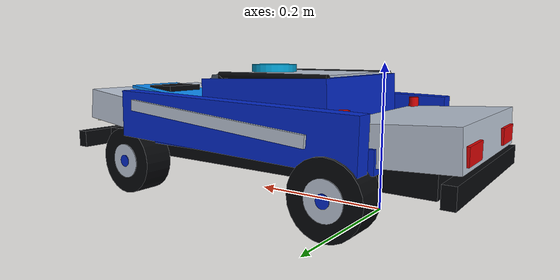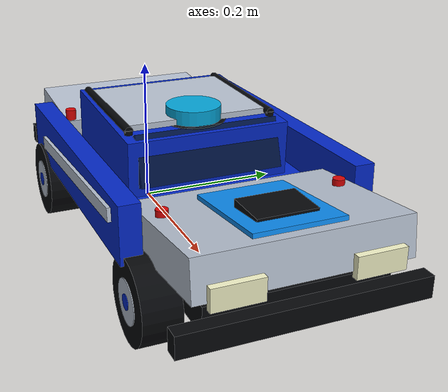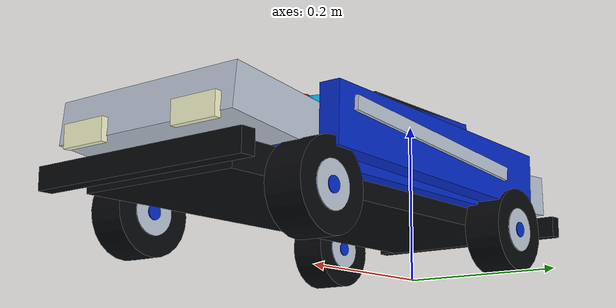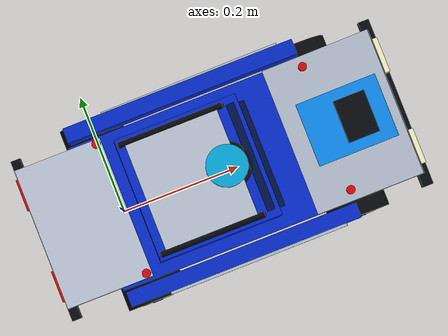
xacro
<?xml version="1.0"?>
<robot xmlns:xacro="http://www.ros.org/wiki/xacro" name="xycar">
  <!-- Measured geometry. Coordinate convention: +x forward, +y left, +z up. -->
  <xacro:arg name="wheelbase" default="0.355"/>
  <xacro:arg name="front_track" default="0.250"/>
  <xacro:arg name="rear_track" default="0.266"/>
  <xacro:arg name="front_wheel_radius" default="0.050"/>
  <xacro:arg name="rear_wheel_radius" default="0.050"/>
  <xacro:arg name="effective_wheel_radius" default="0.050"/>
  <xacro:arg name="wheel_width" default="0.045"/>
  <xacro:arg name="front_overhang" default="0.125"/>
  <xacro:arg name="rear_overhang" default="0.140"/>
  <xacro:arg name="vehicle_length" default="0.620"/>
  <xacro:arg name="vehicle_height" default="0.187"/>
  <xacro:arg name="total_mass" default="4.1"/>
  <!-- 추정값 — 실측 필요. 전체 폭 미측정으로 독립 xacro 인자화했다. -->
  <xacro:arg name="vehicle_width" default="0.320"/>

  <!-- 미측정값 — 실측 후 조정할 동역학 파라미터. -->
  <xacro:arg name="tire_friction_mu" default="1.0"/>
  <xacro:arg name="tire_friction_mu2" default="1.0"/>
  <xacro:arg name="longitudinal_slip" default="0.0"/>
  <xacro:arg name="lateral_slip" default="0.0"/>
  <xacro:arg name="wheel_normal_force_n" default="10.05"/>
  <xacro:arg name="max_acceleration_mps2" default="1.5"/>
  <xacro:arg name="max_deceleration_mps2" default="-2.0"/>
  <xacro:arg name="max_jerk_mps3" default="10.0"/>
  <xacro:arg name="min_jerk_mps3" default="-10.0"/>
  <xacro:arg name="steering_joint_velocity_rad_s" default="1.2"/>
  <xacro:arg name="gazebo_steering_limit_rad" default="0.72"/>

  <!-- 센서 장착 위치도 미측정값 — 실측 필요. rosbag에서 동역학/pose를 추정하지 않았다. -->
  <xacro:arg name="camera_xyz" default="0.400 0 0.140"/>
  <xacro:arg name="camera_rpy" default="0 0 0"/>
  <xacro:arg name="lidar_xyz" default="0.180 0 0.180"/>
  <xacro:arg name="lidar_rpy" default="0 0 0"/>

  <xacro:arg name="camera_update_rate_hz" default="30.0"/>
  <xacro:arg name="camera_horizontal_fov_rad" default="1.260227895"/>
  <xacro:arg name="lidar_update_rate_hz" default="9.66"/>
  <xacro:arg name="lidar_samples" default="500"/>
  <xacro:arg name="lidar_min_angle_rad" default="-3.141592654"/>
  <xacro:arg name="lidar_max_angle_rad" default="3.141592654"/>
  <xacro:arg name="lidar_min_range_m" default="0.1"/>
  <xacro:arg name="lidar_max_range_m" default="16.0"/>
  <xacro:arg name="lidar_range_resolution_m" default="0.01"/>

  <xacro:property name="wheelbase" value="$(arg wheelbase)"/>
  <xacro:property name="front_track" value="$(arg front_track)"/>
  <xacro:property name="rear_track" value="$(arg rear_track)"/>
  <xacro:property name="front_wheel_radius" value="$(arg front_wheel_radius)"/>
  <xacro:property name="rear_wheel_radius" value="$(arg rear_wheel_radius)"/>
  <xacro:property name="effective_wheel_radius" value="$(arg effective_wheel_radius)"/>
  <xacro:property name="wheel_width" value="$(arg wheel_width)"/>
  <xacro:property name="rear_overhang" value="$(arg rear_overhang)"/>
  <xacro:property name="vehicle_length" value="$(arg vehicle_length)"/>
  <xacro:property name="vehicle_height" value="$(arg vehicle_height)"/>
  <xacro:property name="vehicle_width" value="$(arg vehicle_width)"/>
  <xacro:property name="total_mass" value="$(arg total_mass)"/>
  <xacro:property name="body_center_x" value="${-rear_overhang + vehicle_length * 0.5}"/>
  <xacro:property name="body_bottom_z" value="0.050"/>
  <xacro:property name="body_height" value="${vehicle_height - body_bottom_z}"/>
  <xacro:property name="body_center_z" value="${body_bottom_z + body_height * 0.5}"/>

  <!-- Mass allocation: chassis 3.50 + wheels 4*0.14 + knuckles 2*0.01
       + camera 0.01 + lidar 0.01 = measured total 4.10 kg. -->
  <xacro:property name="wheel_mass" value="0.14"/>
  <xacro:property name="small_link_mass" value="0.01"/>
  <xacro:property name="body_mass" value="${total_mass - 4.0 * wheel_mass - 4.0 * small_link_mass}"/>

  <!-- Box inertia about its centre: Ixx=m(w^2+h^2)/12,
       Iyy=m(l^2+h^2)/12, Izz=m(l^2+w^2)/12. -->
  <xacro:property name="body_ixx" value="${body_mass * (vehicle_width**2 + body_height**2) / 12.0}"/>
  <xacro:property name="body_iyy" value="${body_mass * (vehicle_length**2 + body_height**2) / 12.0}"/>
  <xacro:property name="body_izz" value="${body_mass * (vehicle_length**2 + vehicle_width**2) / 12.0}"/>

  <!-- Y2 사진을 참고한 시각 재질. CAD 형상이 아닌 measured envelope 안의
       primitive 기반 표현이며 충돌·질량·관성 계산과 분리되어 있다. -->
  <material name="y2_blue"><color rgba="0.015 0.16 0.78 1"/></material>
  <material name="y2_light_blue"><color rgba="0.05 0.55 0.95 1"/></material>
  <material name="y2_silver"><color rgba="0.72 0.76 0.82 1"/></material>
  <material name="y2_dark"><color rgba="0.025 0.03 0.04 1"/></material>
  <material name="y2_glass"><color rgba="0.04 0.10 0.16 0.75"/></material>
  <material name="y2_red"><color rgba="0.85 0.02 0.02 1"/></material>
  <material name="y2_white"><color rgba="0.95 0.95 0.78 1"/></material>
  <material name="y2_lidar"><color rgba="0.02 0.65 0.85 1"/></material>

  <!-- libsdformat does not reliably resolve a URDF global named material on
       every visual. Expand the color inline so Gazebo keeps the Y2 palette. -->
  <xacro:macro name="y2_material" params="name rgba">
    <material name="${name}"><color rgba="${rgba}"/></material>
  </xacro:macro>

  <xacro:macro name="wheel_link" params="name radius">
    <link name="${name}">
      <!-- Solid-cylinder inertia. Cylinder axis is wheel y:
           Iyy=m*r^2/2, Ixx=Izz=m*(3*r^2+w^2)/12. -->
      <inertial>
        <mass value="${wheel_mass}"/>
        <inertia
          ixx="${wheel_mass * (3.0 * radius**2 + wheel_width**2) / 12.0}"
          ixy="0" ixz="0"
          iyy="${wheel_mass * radius**2 / 2.0}"
          iyz="0"
          izz="${wheel_mass * (3.0 * radius**2 + wheel_width**2) / 12.0}"/>
      </inertial>
      <visual name="${name}_tire_visual">
        <origin rpy="1.570796327 0 0"/>
        <geometry><cylinder radius="${radius}" length="${wheel_width}"/></geometry>
        <xacro:y2_material name="y2_dark" rgba="0.025 0.03 0.04 1"/>
      </visual>
      <visual name="${name}_hub_visual">
        <origin rpy="1.570796327 0 0"/>
        <geometry><cylinder radius="${radius * 0.52}" length="${wheel_width + 0.002}"/></geometry>
        <xacro:y2_material name="y2_silver" rgba="0.72 0.76 0.82 1"/>
      </visual>
      <visual name="${name}_hub_cap_visual">
        <origin rpy="1.570796327 0 0"/>
        <geometry><cylinder radius="${radius * 0.18}" length="${wheel_width + 0.004}"/></geometry>
        <xacro:y2_material name="y2_blue" rgba="0.015 0.16 0.78 1"/>
      </visual>
      <collision>
        <origin rpy="1.570796327 0 0"/>
        <geometry><cylinder radius="${radius}" length="${wheel_width}"/></geometry>
      </collision>
    </link>
    <gazebo reference="${name}">
      <mu1>$(arg tire_friction_mu)</mu1>
      <mu2>$(arg tire_friction_mu2)</mu2>
      <material>Gazebo/Black</material>
    </gazebo>
  </xacro:macro>

  <xacro:macro name="small_inertial">
    <!-- 20 mm cube placeholder inertia: I=m(a^2+a^2)/12. -->
    <inertial>
      <mass value="${small_link_mass}"/>
      <inertia ixx="${small_link_mass * 0.02**2 / 6.0}" ixy="0" ixz="0"
               iyy="${small_link_mass * 0.02**2 / 6.0}" iyz="0"
               izz="${small_link_mass * 0.02**2 / 6.0}"/>
    </inertial>
  </xacro:macro>

  <!-- base_link origin is the rear axle centre, so Gazebo odometry is measured
       at the same point as the circle-test trajectories. -->
  <link name="base_link">
    <inertial>
      <origin xyz="${body_center_x} 0 ${body_center_z}"/>
      <mass value="${body_mass}"/>
      <inertia ixx="${body_ixx}" ixy="0" ixz="0" iyy="${body_iyy}" iyz="0" izz="${body_izz}"/>
    </inertial>
    <visual name="y2_lower_chassis">
      <origin xyz="0.170 0 0.072"/>
      <geometry><box size="0.560 0.205 0.032"/></geometry>
      <xacro:y2_material name="y2_dark" rgba="0.025 0.03 0.04 1"/>
    </visual>
    <visual name="y2_center_floor">
      <origin xyz="0.165 0 0.093"/>
      <geometry><box size="0.420 0.245 0.030"/></geometry>
      <xacro:y2_material name="y2_blue" rgba="0.015 0.16 0.78 1"/>
    </visual>
    <visual name="y2_left_side_panel">
      <origin xyz="0.155 0.139 0.119" rpy="0 -0.025 0"/>
      <geometry><box size="0.390 0.025 0.068"/></geometry>
      <xacro:y2_material name="y2_blue" rgba="0.015 0.16 0.78 1"/>
    </visual>
    <visual name="y2_right_side_panel">
      <origin xyz="0.155 -0.139 0.119" rpy="0 -0.025 0"/>
      <geometry><box size="0.390 0.025 0.068"/></geometry>
      <xacro:y2_material name="y2_blue" rgba="0.015 0.16 0.78 1"/>
    </visual>
    <visual name="y2_left_silver_stripe">
      <origin xyz="0.175 0.153 0.126" rpy="0 -0.08 0"/>
      <geometry><box size="0.300 0.006 0.016"/></geometry>
      <xacro:y2_material name="y2_silver" rgba="0.72 0.76 0.82 1"/>
    </visual>
    <visual name="y2_right_silver_stripe">
      <origin xyz="0.175 -0.153 0.126" rpy="0 -0.08 0"/>
      <geometry><box size="0.300 0.006 0.016"/></geometry>
      <xacro:y2_material name="y2_silver" rgba="0.72 0.76 0.82 1"/>
    </visual>
    <visual name="y2_sloped_hood">
      <origin xyz="0.380 0 0.119" rpy="0 -0.12 0"/>
      <geometry><box size="0.180 0.245 0.048"/></geometry>
      <xacro:y2_material name="y2_silver" rgba="0.72 0.76 0.82 1"/>
    </visual>
    <visual name="y2_hood_blue_insert">
      <origin xyz="0.385 0 0.145" rpy="0 -0.12 0"/>
      <geometry><box size="0.135 0.105 0.008"/></geometry>
      <xacro:y2_material name="y2_light_blue" rgba="0.05 0.55 0.95 1"/>
    </visual>
    <visual name="y2_rear_deck">
      <origin xyz="-0.065 0 0.112" rpy="0 0.05 0"/>
      <geometry><box size="0.145 0.235 0.050"/></geometry>
      <xacro:y2_material name="y2_silver" rgba="0.72 0.76 0.82 1"/>
    </visual>
    <visual name="y2_cabin">
      <origin xyz="0.130 0 0.143" rpy="0 0.03 0"/>
      <geometry><box size="0.205 0.205 0.073"/></geometry>
      <xacro:y2_material name="y2_blue" rgba="0.015 0.16 0.78 1"/>
    </visual>
    <visual name="y2_windshield">
      <origin xyz="0.229 0 0.151" rpy="0 -0.33 0"/>
      <geometry><box size="0.012 0.180 0.062"/></geometry>
      <xacro:y2_material name="y2_glass" rgba="0.04 0.10 0.16 0.75"/>
    </visual>
    <visual name="y2_roof_panel">
      <origin xyz="0.120 0 0.179"/>
      <geometry><box size="0.155 0.190 0.012"/></geometry>
      <xacro:y2_material name="y2_silver" rgba="0.72 0.76 0.82 1"/>
    </visual>
    <visual name="y2_front_bumper">
      <origin xyz="0.472 0 0.072"/>
      <geometry><box size="0.018 0.285 0.026"/></geometry>
      <xacro:y2_material name="y2_dark" rgba="0.025 0.03 0.04 1"/>
    </visual>
    <visual name="y2_rear_bumper">
      <origin xyz="-0.132 0 0.072"/>
      <geometry><box size="0.016 0.275 0.026"/></geometry>
      <xacro:y2_material name="y2_dark" rgba="0.025 0.03 0.04 1"/>
    </visual>
    <visual name="y2_left_headlight">
      <origin xyz="0.475 0.078 0.112"/>
      <geometry><box size="0.008 0.058 0.026"/></geometry>
      <xacro:y2_material name="y2_white" rgba="0.95 0.95 0.78 1"/>
    </visual>
    <visual name="y2_right_headlight">
      <origin xyz="0.475 -0.078 0.112"/>
      <geometry><box size="0.008 0.058 0.026"/></geometry>
      <xacro:y2_material name="y2_white" rgba="0.95 0.95 0.78 1"/>
    </visual>
    <visual name="y2_left_tail_light">
      <origin xyz="-0.138 0.078 0.108"/>
      <geometry><box size="0.006 0.052 0.022"/></geometry>
      <xacro:y2_material name="y2_red" rgba="0.85 0.02 0.02 1"/>
    </visual>
    <visual name="y2_right_tail_light">
      <origin xyz="-0.138 -0.078 0.108"/>
      <geometry><box size="0.006 0.052 0.022"/></geometry>
      <xacro:y2_material name="y2_red" rgba="0.85 0.02 0.02 1"/>
    </visual>
    <visual name="y2_rollbar_front_left">
      <origin xyz="0.205 0.092 0.145"/>
      <geometry><cylinder radius="0.005" length="0.075"/></geometry>
      <xacro:y2_material name="y2_dark" rgba="0.025 0.03 0.04 1"/>
    </visual>
    <visual name="y2_rollbar_front_right">
      <origin xyz="0.205 -0.092 0.145"/>
      <geometry><cylinder radius="0.005" length="0.075"/></geometry>
      <xacro:y2_material name="y2_dark" rgba="0.025 0.03 0.04 1"/>
    </visual>
    <visual name="y2_rollbar_rear_left">
      <origin xyz="0.035 0.092 0.145"/>
      <geometry><cylinder radius="0.005" length="0.075"/></geometry>
      <xacro:y2_material name="y2_dark" rgba="0.025 0.03 0.04 1"/>
    </visual>
    <visual name="y2_rollbar_rear_right">
      <origin xyz="0.035 -0.092 0.145"/>
      <geometry><cylinder radius="0.005" length="0.075"/></geometry>
      <xacro:y2_material name="y2_dark" rgba="0.025 0.03 0.04 1"/>
    </visual>
    <visual name="y2_left_roof_rail">
      <origin xyz="0.120 0.092 0.182" rpy="0 1.570796327 0"/>
      <geometry><cylinder radius="0.005" length="0.175"/></geometry>
      <xacro:y2_material name="y2_dark" rgba="0.025 0.03 0.04 1"/>
    </visual>
    <visual name="y2_right_roof_rail">
      <origin xyz="0.120 -0.092 0.182" rpy="0 1.570796327 0"/>
      <geometry><cylinder radius="0.005" length="0.175"/></geometry>
      <xacro:y2_material name="y2_dark" rgba="0.025 0.03 0.04 1"/>
    </visual>
    <visual name="y2_front_left_spring">
      <origin xyz="0.350 0.105 0.115"/>
      <geometry><cylinder radius="0.007" length="0.065"/></geometry>
      <xacro:y2_material name="y2_red" rgba="0.85 0.02 0.02 1"/>
    </visual>
    <visual name="y2_front_right_spring">
      <origin xyz="0.350 -0.105 0.115"/>
      <geometry><cylinder radius="0.007" length="0.065"/></geometry>
      <xacro:y2_material name="y2_red" rgba="0.85 0.02 0.02 1"/>
    </visual>
    <visual name="y2_rear_left_spring">
      <origin xyz="0.000 0.110 0.115"/>
      <geometry><cylinder radius="0.007" length="0.065"/></geometry>
      <xacro:y2_material name="y2_red" rgba="0.85 0.02 0.02 1"/>
    </visual>
    <visual name="y2_rear_right_spring">
      <origin xyz="0.000 -0.110 0.115"/>
      <geometry><cylinder radius="0.007" length="0.065"/></geometry>
      <xacro:y2_material name="y2_red" rgba="0.85 0.02 0.02 1"/>
    </visual>
    <collision>
      <origin xyz="${body_center_x} 0 ${body_center_z}"/>
      <geometry><box size="${vehicle_length} ${vehicle_width} ${body_height}"/></geometry>
    </collision>
  </link>

  <xacro:wheel_link name="rear_left_wheel" radius="${rear_wheel_radius}"/>
  <xacro:wheel_link name="rear_right_wheel" radius="${rear_wheel_radius}"/>
  <joint name="rear_left_wheel_joint" type="continuous">
    <origin xyz="0 ${rear_track * 0.5} ${rear_wheel_radius}"/>
    <parent link="base_link"/><child link="rear_left_wheel"/><axis xyz="0 1 0"/>
  </joint>
  <joint name="rear_right_wheel_joint" type="continuous">
    <origin xyz="0 ${-rear_track * 0.5} ${rear_wheel_radius}"/>
    <parent link="base_link"/><child link="rear_right_wheel"/><axis xyz="0 1 0"/>
  </joint>

  <link name="front_left_steering_link"><xacro:small_inertial/></link>
  <link name="front_right_steering_link"><xacro:small_inertial/></link>
  <joint name="front_left_steering_joint" type="revolute">
    <origin xyz="${wheelbase} ${front_track * 0.5} ${front_wheel_radius}"/>
    <parent link="base_link"/><child link="front_left_steering_link"/><axis xyz="0 0 1"/>
    <limit lower="-$(arg gazebo_steering_limit_rad)" upper="$(arg gazebo_steering_limit_rad)"
           effort="12.0" velocity="$(arg steering_joint_velocity_rad_s)"/>
  </joint>
  <joint name="front_right_steering_joint" type="revolute">
    <origin xyz="${wheelbase} ${-front_track * 0.5} ${front_wheel_radius}"/>
    <parent link="base_link"/><child link="front_right_steering_link"/><axis xyz="0 0 1"/>
    <limit lower="-$(arg gazebo_steering_limit_rad)" upper="$(arg gazebo_steering_limit_rad)"
           effort="12.0" velocity="$(arg steering_joint_velocity_rad_s)"/>
  </joint>

  <xacro:wheel_link name="front_left_wheel" radius="${front_wheel_radius}"/>
  <xacro:wheel_link name="front_right_wheel" radius="${front_wheel_radius}"/>
  <joint name="front_left_wheel_joint" type="continuous">
    <parent link="front_left_steering_link"/><child link="front_left_wheel"/><axis xyz="0 1 0"/>
  </joint>
  <joint name="front_right_wheel_joint" type="continuous">
    <parent link="front_right_steering_link"/><child link="front_right_wheel"/><axis xyz="0 1 0"/>
  </joint>

  <link name="usb_cam">
    <xacro:small_inertial/>
    <visual name="camera_body">
      <geometry><box size="0.052 0.070 0.034"/></geometry>
      <xacro:y2_material name="y2_dark" rgba="0.025 0.03 0.04 1"/>
    </visual>
    <visual name="camera_lens">
      <origin xyz="0.032 0 0" rpy="0 1.570796327 0"/>
      <geometry><cylinder radius="0.012" length="0.014"/></geometry>
      <xacro:y2_material name="y2_glass" rgba="0.04 0.10 0.16 0.75"/>
    </visual>
  </link>
  <joint name="usb_cam_joint" type="fixed">
    <origin xyz="$(arg camera_xyz)" rpy="$(arg camera_rpy)"/>
    <parent link="base_link"/><child link="usb_cam"/>
  </joint>
  <link name="laser_frame">
    <xacro:small_inertial/>
    <visual name="lidar_base">
      <origin xyz="0 0 -0.010"/>
      <geometry><cylinder radius="0.040" length="0.016"/></geometry>
      <xacro:y2_material name="y2_dark" rgba="0.025 0.03 0.04 1"/>
    </visual>
    <visual name="lidar_head">
      <origin xyz="0 0 0.006"/>
      <geometry><cylinder radius="0.034" length="0.020"/></geometry>
      <xacro:y2_material name="y2_lidar" rgba="0.02 0.65 0.85 1"/>
    </visual>
  </link>
  <joint name="laser_frame_joint" type="fixed">
    <origin xyz="$(arg lidar_xyz)" rpy="$(arg lidar_rpy)"/>
    <parent link="base_link"/><child link="laser_frame"/>
  </joint>

  <gazebo reference="usb_cam">
    <sensor name="xycar_camera" type="camera">
      <topic>/xycar_sim/image_raw</topic>
      <update_rate>$(arg camera_update_rate_hz)</update_rate>
      <always_on>true</always_on>
      <visualize>false</visualize>
      <camera>
        <camera_info_topic>/xycar_sim/camera_info_raw</camera_info_topic>
        <horizontal_fov>$(arg camera_horizontal_fov_rad)</horizontal_fov>
        <image><width>640</width><height>480</height><format>R8G8B8</format></image>
        <clip><near>0.05</near><far>100.0</far></clip>
        <distortion>
          <k1>-0.361976</k1><k2>0.11051</k2><k3>0.0</k3>
          <p1>0.001014</p1><p2>0.000505</p2>
          <center>0.477489588 0.507788233</center>
        </distortion>
        <optical_frame_id>usb_cam</optical_frame_id>
      </camera>
    </sensor>
  </gazebo>

  <gazebo reference="laser_frame">
    <sensor name="xycar_lidar" type="gpu_lidar">
      <topic>/xycar_sim/scan_raw</topic>
      <update_rate>$(arg lidar_update_rate_hz)</update_rate>
      <always_on>true</always_on>
      <visualize>false</visualize>
      <lidar>
        <scan><horizontal>
          <samples>$(arg lidar_samples)</samples><resolution>1</resolution>
          <min_angle>$(arg lidar_min_angle_rad)</min_angle>
          <max_angle>$(arg lidar_max_angle_rad)</max_angle>
        </horizontal></scan>
        <range>
          <min>$(arg lidar_min_range_m)</min><max>$(arg lidar_max_range_m)</max>
          <resolution>$(arg lidar_range_resolution_m)</resolution>
        </range>
      </lidar>
    </sensor>
  </gazebo>

  <gazebo>
    <!-- Native Gazebo Sim Harmonic system; Gazebo Classic plugins are not used.
         Only rear wheel joints are actuated, while both front wheel joints roll passively. -->
    <plugin filename="gz-sim-ackermann-steering-system" name="gz::sim::systems::AckermannSteering">
      <left_joint>rear_left_wheel_joint</left_joint>
      <right_joint>rear_right_wheel_joint</right_joint>
      <left_steering_joint>front_left_steering_joint</left_steering_joint>
      <right_steering_joint>front_right_steering_joint</right_steering_joint>
      <kingpin_width>${front_track}</kingpin_width>
      <wheel_separation>${rear_track}</wheel_separation>
      <wheel_base>${wheelbase}</wheel_base>
      <wheel_radius>${effective_wheel_radius}</wheel_radius>
      <steering_limit>$(arg gazebo_steering_limit_rad)</steering_limit>
      <steer_p_gain>12.0</steer_p_gain>
      <min_velocity>-2.5</min_velocity><max_velocity>2.5</max_velocity>
      <min_acceleration>$(arg max_deceleration_mps2)</min_acceleration>
      <max_acceleration>$(arg max_acceleration_mps2)</max_acceleration>
      <min_jerk>$(arg min_jerk_mps3)</min_jerk><max_jerk>$(arg max_jerk_mps3)</max_jerk>
      <odom_publish_frequency>50</odom_publish_frequency>
      <topic>/model/xycar/cmd_vel</topic>
      <odom_topic>/model/xycar/odometry</odom_topic>
      <tf_topic>/model/xycar/tf</tf_topic>
      <frame_id>odom</frame_id><child_frame_id>base_link</child_frame_id>
    </plugin>
    <plugin filename="gz-sim-wheel-slip-system" name="gz::sim::systems::WheelSlip">
      <wheel link_name="front_left_wheel">
        <wheel_radius>${front_wheel_radius}</wheel_radius>
        <slip_compliance_lateral>$(arg lateral_slip)</slip_compliance_lateral>
        <slip_compliance_longitudinal>$(arg longitudinal_slip)</slip_compliance_longitudinal>
        <wheel_normal_force>$(arg wheel_normal_force_n)</wheel_normal_force>
      </wheel>
      <wheel link_name="front_right_wheel">
        <wheel_radius>${front_wheel_radius}</wheel_radius>
        <slip_compliance_lateral>$(arg lateral_slip)</slip_compliance_lateral>
        <slip_compliance_longitudinal>$(arg longitudinal_slip)</slip_compliance_longitudinal>
        <wheel_normal_force>$(arg wheel_normal_force_n)</wheel_normal_force>
      </wheel>
      <wheel link_name="rear_left_wheel">
        <wheel_radius>${rear_wheel_radius}</wheel_radius>
        <slip_compliance_lateral>$(arg lateral_slip)</slip_compliance_lateral>
        <slip_compliance_longitudinal>$(arg longitudinal_slip)</slip_compliance_longitudinal>
        <wheel_normal_force>$(arg wheel_normal_force_n)</wheel_normal_force>
      </wheel>
      <wheel link_name="rear_right_wheel">
        <wheel_radius>${rear_wheel_radius}</wheel_radius>
        <slip_compliance_lateral>$(arg lateral_slip)</slip_compliance_lateral>
        <slip_compliance_longitudinal>$(arg longitudinal_slip)</slip_compliance_longitudinal>
        <wheel_normal_force>$(arg wheel_normal_force_n)</wheel_normal_force>
      </wheel>
    </plugin>
  </gazebo>
</robot>
